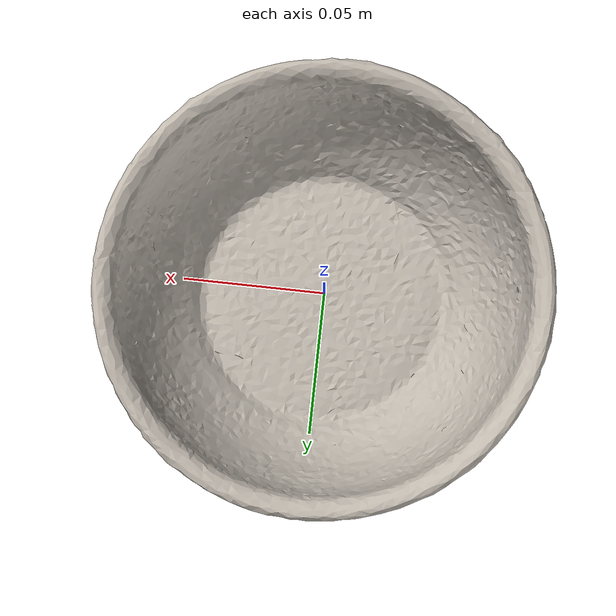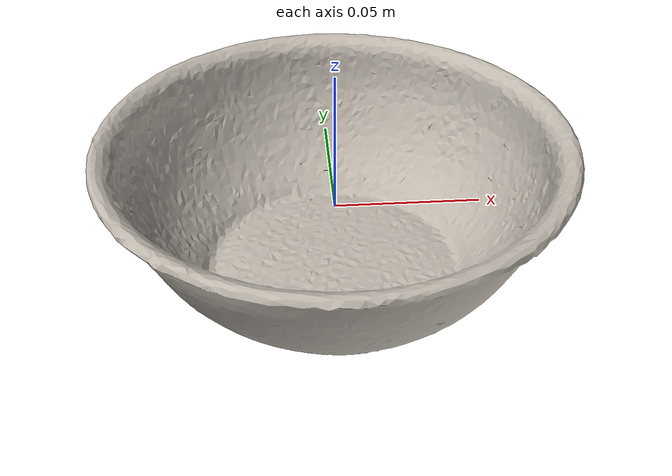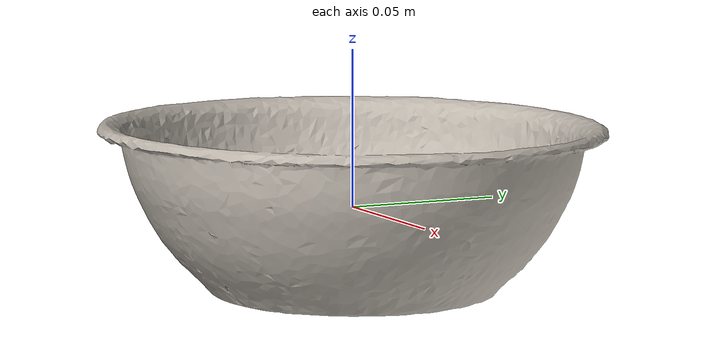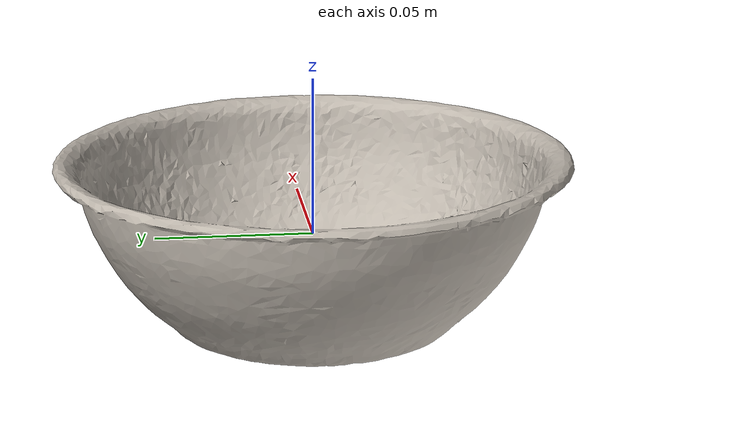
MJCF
<mujoco model="bowl_ycb">
  <default>
    <default class="visual">
      <geom group="1" type="mesh" contype="0" conaffinity="0"/>
    </default>
    <default class="collision">
      <geom group="0" type="mesh"/>
    </default>
  </default>
  <asset>
    <texture type="2d" name="bowl_ycb" file="bowl_ycb.png"/>
    <material name="bowl_ycb" texture="bowl_ycb" specular="0.4000000000000001" shininess="0.001"/>
    <mesh name="bowl_ycb" file="bowl_ycb.obj"/>
  </asset>
  <worldbody>
    <body>
    <body name="object">
      <geom material="bowl_ycb" mesh="bowl_ycb" class="visual"/>
      <geom mesh="bowl_ycb" class="collision"/>
    </body>
      <site rgba="0 0 0 0" size="0.005" pos="0 0 -0.04" name="bottom_site" />
      <site rgba="0 0 0 0" size="0.005" pos="0 0 0.04" name="top_site" />
      <site rgba="0 0 0 0" size="0.005" pos="0.005 0.005 0" name="horizontal_radius_site" />
   </body>
  </worldbody>
</mujoco>
